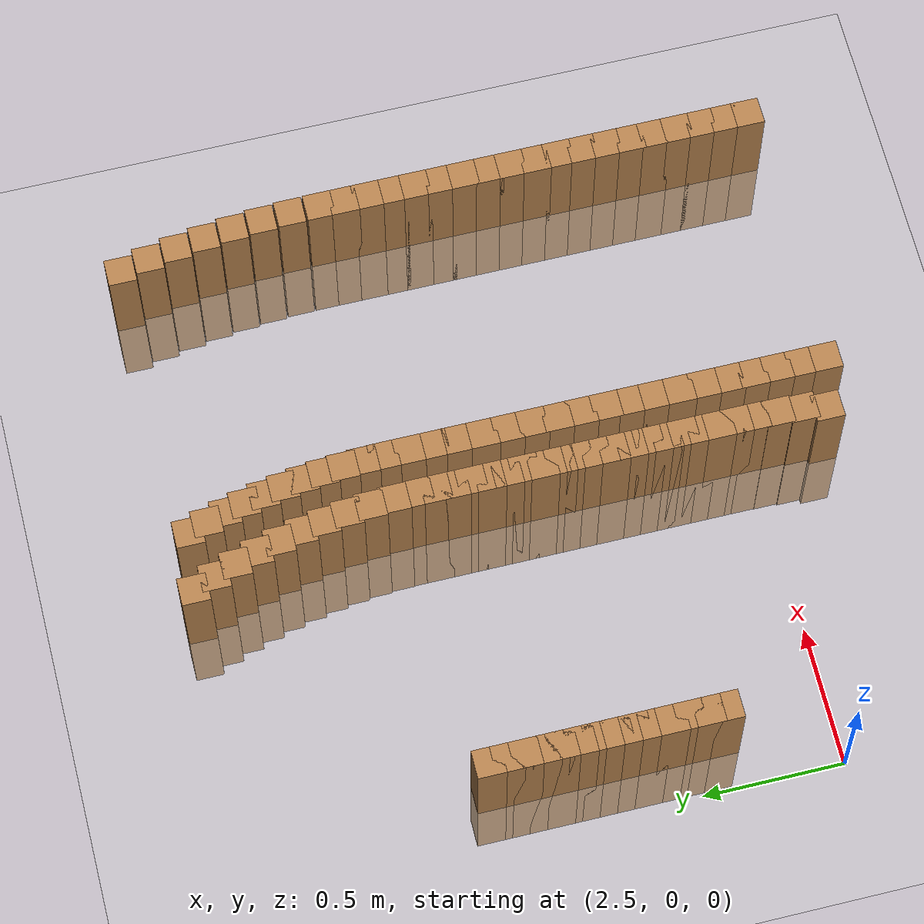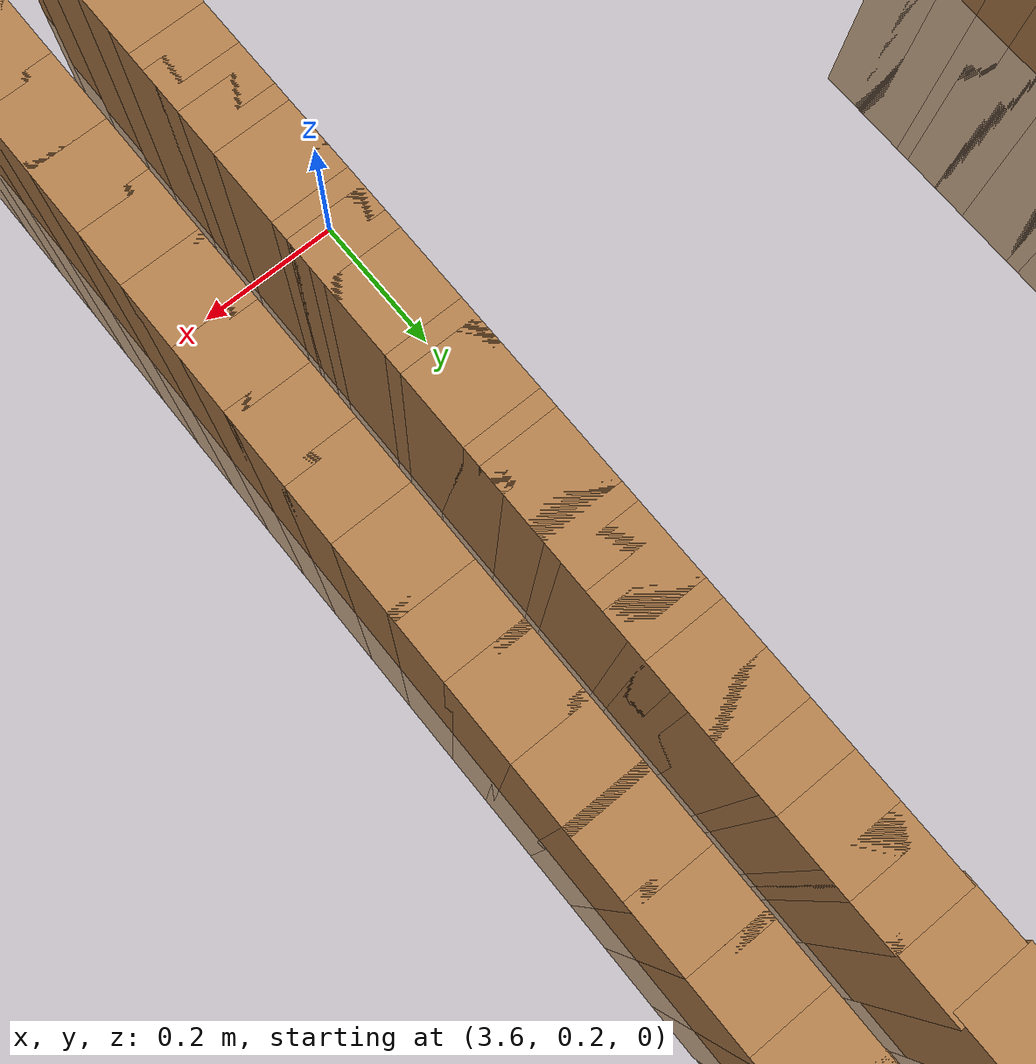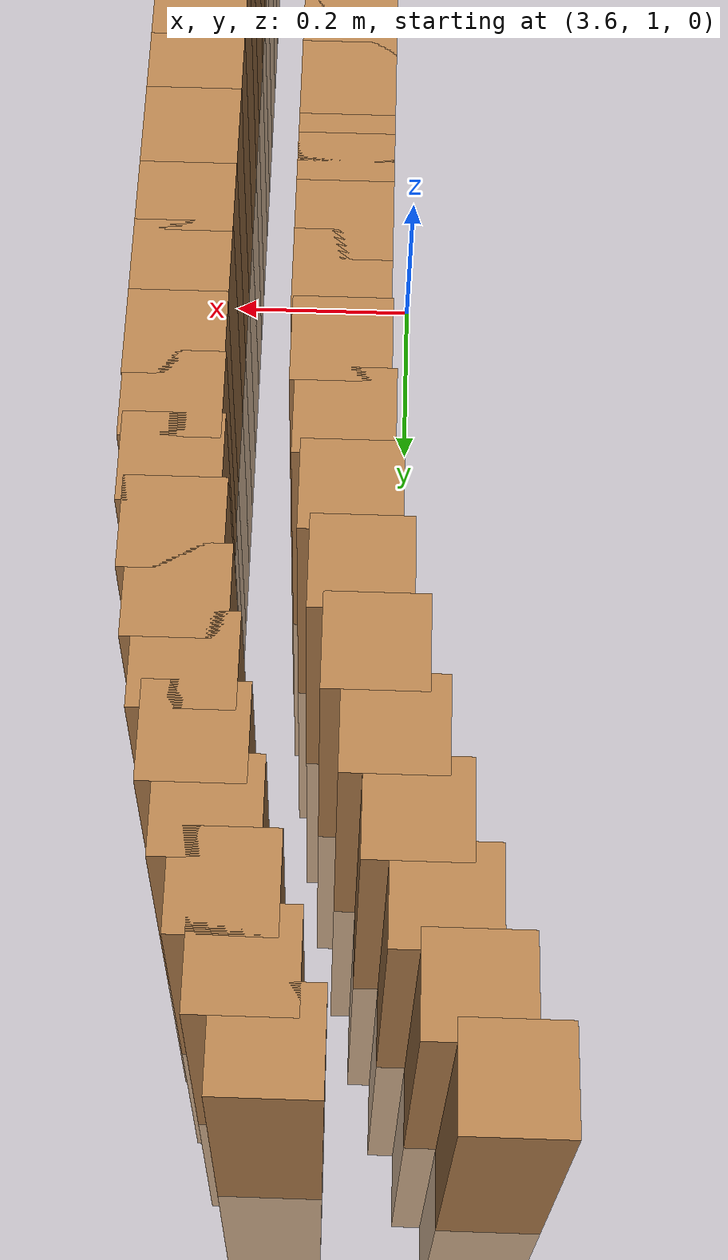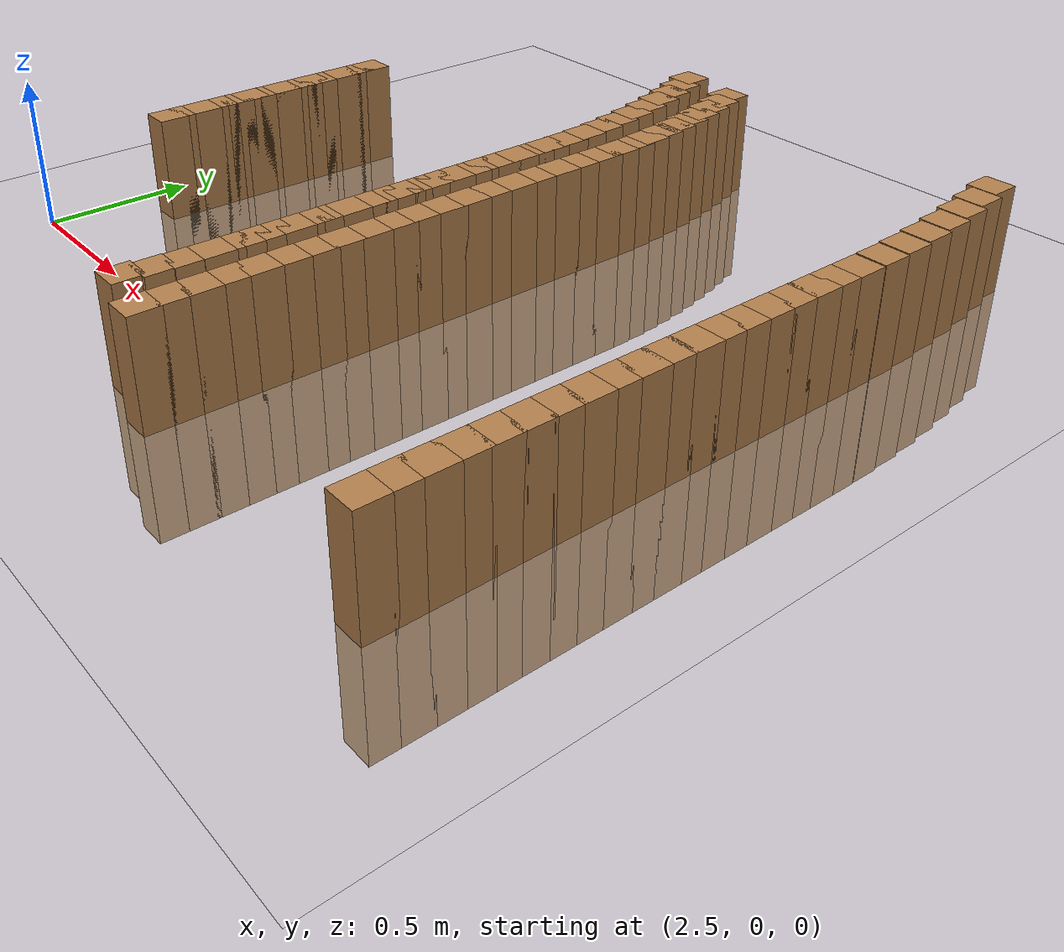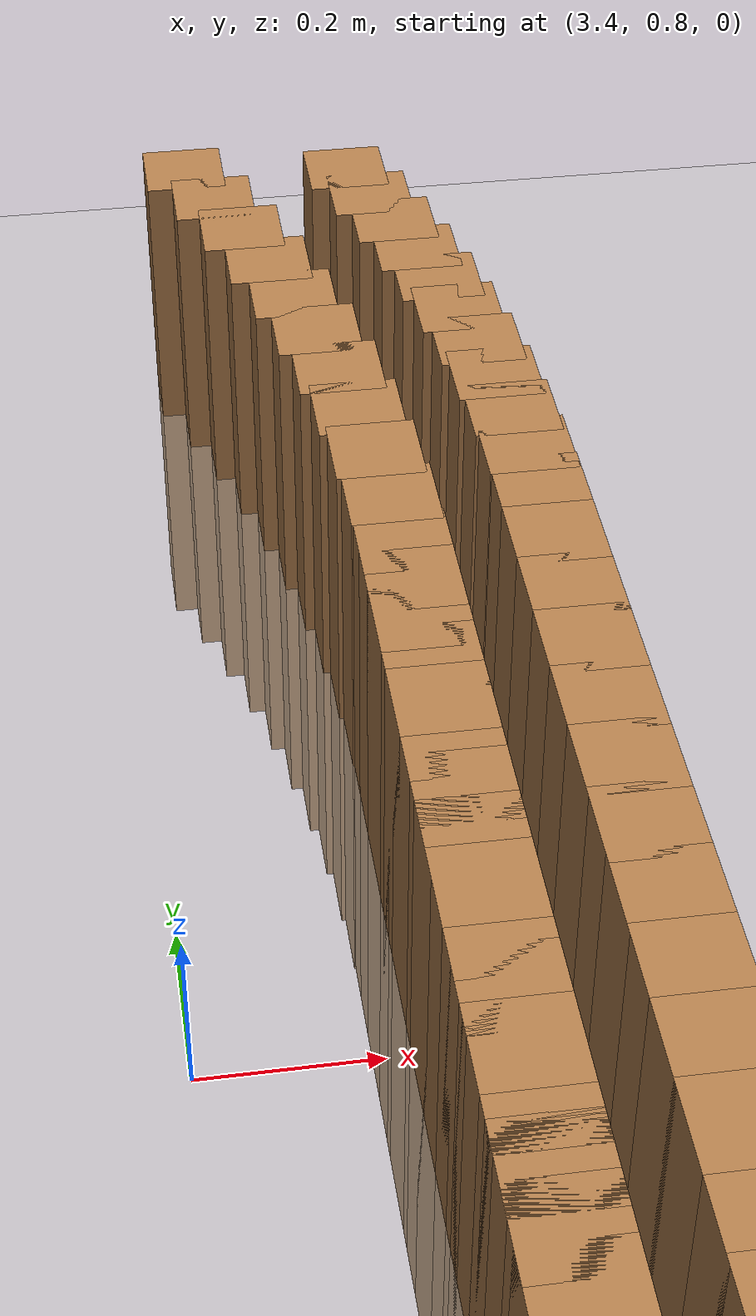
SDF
<sdf version="1.6">
 <world name="default">
  <model name="ground_plane">
   <static>1</static>
   <link name="link">
    <collision name="collision">
     <geometry><plane><normal>0 0 1</normal><size>100 100</size></plane></geometry>
     <surface><friction><ode><mu>100</mu><mu2>50</mu2></ode></friction></surface>
    </collision>
    <visual name="visual">
     <cast_shadows>0</cast_shadows>
     <geometry><plane><normal>0 0 1</normal><size>100 100</size></plane></geometry>
     <material>
      <script><uri>file://media/materials/scripts/gazebo.material</uri><name>Gazebo/Grey</name></script>
     </material>
    </visual>
   </link>
  </model>
  <model name="track">
   <link name="inner_176">
    <pose>3.509146 2.018417 0.000000 0 -0 0</pose>
    <collision name="collision"><geometry><box><size>0.1 0.1 0.7</size></box></geometry></collision>
    <visual name="visual">
     <geometry><box><size>0.1 0.1 0.7</size></box></geometry>
     <material>
      <script><uri>file://media/materials/scripts/gazebo.material</uri><name>Gazebo/Wood</name></script>
     </material>
    </visual>
   </link>
   <link name="inner_177">
    <pose>3.540439 1.940664 0.000000 0 -0 0</pose>
    <collision name="collision"><geometry><box><size>0.1 0.1 0.7</size></box></geometry></collision>
    <visual name="visual">
     <geometry><box><size>0.1 0.1 0.7</size></box></geometry>
     <material>
      <script><uri>file://media/materials/scripts/gazebo.material</uri><name>Gazebo/Wood</name></script>
     </material>
    </visual>
   </link>
   <link name="inner_178">
    <pose>3.568576 1.861714 0.000000 0 -0 0</pose>
    <collision name="collision"><geometry><box><size>0.1 0.1 0.7</size></box></geometry></collision>
    <visual name="visual">
     <geometry><box><size>0.1 0.1 0.7</size></box></geometry>
     <material>
      <script><uri>file://media/materials/scripts/gazebo.material</uri><name>Gazebo/Wood</name></script>
     </material>
    </visual>
   </link>
   <link name="inner_179">
    <pose>3.593511 1.781696 0.000000 0 -0 0</pose>
    <collision name="collision"><geometry><box><size>0.1 0.1 0.7</size></box></geometry></collision>
    <visual name="visual">
     <geometry><box><size>0.1 0.1 0.7</size></box></geometry>
     <material>
      <script><uri>file://media/materials/scripts/gazebo.material</uri><name>Gazebo/Wood</name></script>
     </material>
    </visual>
   </link>
   <link name="inner_180">
    <pose>3.615203 1.700738 0.000000 0 -0 0</pose>
    <collision name="collision"><geometry><box><size>0.1 0.1 0.7</size></box></geometry></collision>
    <visual name="visual">
     <geometry><box><size>0.1 0.1 0.7</size></box></geometry>
     <material>
      <script><uri>file://media/materials/scripts/gazebo.material</uri><name>Gazebo/Wood</name></script>
     </material>
    </visual>
   </link>
   <link name="inner_181">
    <pose>3.633618 1.618972 0.000000 0 -0 0</pose>
    <collision name="collision"><geometry><box><size>0.1 0.1 0.7</size></box></geometry></collision>
    <visual name="visual">
     <geometry><box><size>0.1 0.1 0.7</size></box></geometry>
     <material>
      <script><uri>file://media/materials/scripts/gazebo.material</uri><name>Gazebo/Wood</name></script>
     </material>
    </visual>
   </link>
   <link name="inner_182">
    <pose>3.648726 1.536532 0.000000 0 -0 0</pose>
    <collision name="collision"><geometry><box><size>0.1 0.1 0.7</size></box></geometry></collision>
    <visual name="visual">
     <geometry><box><size>0.1 0.1 0.7</size></box></geometry>
     <material>
      <script><uri>file://media/materials/scripts/gazebo.material</uri><name>Gazebo/Wood</name></script>
     </material>
    </visual>
   </link>
   <link name="inner_183">
    <pose>3.660502 1.453549 0.000000 0 -0 0</pose>
    <collision name="collision"><geometry><box><size>0.1 0.1 0.7</size></box></geometry></collision>
    <visual name="visual">
     <geometry><box><size>0.1 0.1 0.7</size></box></geometry>
     <material>
      <script><uri>file://media/materials/scripts/gazebo.material</uri><name>Gazebo/Wood</name></script>
     </material>
    </visual>
   </link>
   <link name="inner_184">
    <pose>3.668927 1.370160 0.000000 0 -0 0</pose>
    <collision name="collision"><geometry><box><size>0.1 0.1 0.7</size></box></geometry></collision>
    <visual name="visual">
     <geometry><box><size>0.1 0.1 0.7</size></box></geometry>
     <material>
      <script><uri>file://media/materials/scripts/gazebo.material</uri><name>Gazebo/Wood</name></script>
     </material>
    </visual>
   </link>
   <link name="inner_185">
    <pose>3.673988 1.286499 0.000000 0 -0 0</pose>
    <collision name="collision"><geometry><box><size>0.1 0.1 0.7</size></box></geometry></collision>
    <visual name="visual">
     <geometry><box><size>0.1 0.1 0.7</size></box></geometry>
     <material>
      <script><uri>file://media/materials/scripts/gazebo.material</uri><name>Gazebo/Wood</name></script>
     </material>
    </visual>
   </link>
   <link name="inner_186">
    <pose>3.675676 1.202703 0.000000 0 -0 0</pose>
    <collision name="collision"><geometry><box><size>0.1 0.1 0.7</size></box></geometry></collision>
    <visual name="visual">
     <geometry><box><size>0.1 0.1 0.7</size></box></geometry>
     <material>
      <script><uri>file://media/materials/scripts/gazebo.material</uri><name>Gazebo/Wood</name></script>
     </material>
    </visual>
   </link>
   <link name="inner_187">
    <pose>3.675676 1.140114 0.000000 0 -0 0</pose>
    <collision name="collision"><geometry><box><size>0.1 0.1 0.7</size></box></geometry></collision>
    <visual name="visual">
     <geometry><box><size>0.1 0.1 0.7</size></box></geometry>
     <material>
      <script><uri>file://media/materials/scripts/gazebo.material</uri><name>Gazebo/Wood</name></script>
     </material>
    </visual>
   </link>
   <link name="inner_188">
    <pose>3.675676 1.077525 0.000000 0 -0 0</pose>
    <collision name="collision"><geometry><box><size>0.1 0.1 0.7</size></box></geometry></collision>
    <visual name="visual">
     <geometry><box><size>0.1 0.1 0.7</size></box></geometry>
     <material>
      <script><uri>file://media/materials/scripts/gazebo.material</uri><name>Gazebo/Wood</name></script>
     </material>
    </visual>
   </link>
   <link name="inner_189">
    <pose>3.675676 1.014936 0.000000 0 -0 0</pose>
    <collision name="collision"><geometry><box><size>0.1 0.1 0.7</size></box></geometry></collision>
    <visual name="visual">
     <geometry><box><size>0.1 0.1 0.7</size></box></geometry>
     <material>
      <script><uri>file://media/materials/scripts/gazebo.material</uri><name>Gazebo/Wood</name></script>
     </material>
    </visual>
   </link>
   <link name="inner_190">
    <pose>3.675676 0.952347 0.000000 0 -0 0</pose>
    <collision name="collision"><geometry><box><size>0.1 0.1 0.7</size></box></geometry></collision>
    <visual name="visual">
     <geometry><box><size>0.1 0.1 0.7</size></box></geometry>
     <material>
      <script><uri>file://media/materials/scripts/gazebo.material</uri><name>Gazebo/Wood</name></script>
     </material>
    </visual>
   </link>
   <link name="inner_191">
    <pose>3.675676 0.889758 0.000000 0 -0 0</pose>
    <collision name="collision"><geometry><box><size>0.1 0.1 0.7</size></box></geometry></collision>
    <visual name="visual">
     <geometry><box><size>0.1 0.1 0.7</size></box></geometry>
     <material>
      <script><uri>file://media/materials/scripts/gazebo.material</uri><name>Gazebo/Wood</name></script>
     </material>
    </visual>
   </link>
   <link name="inner_192">
    <pose>3.675676 0.827169 0.000000 0 -0 0</pose>
    <collision name="collision"><geometry><box><size>0.1 0.1 0.7</size></box></geometry></collision>
    <visual name="visual">
     <geometry><box><size>0.1 0.1 0.7</size></box></geometry>
     <material>
      <script><uri>file://media/materials/scripts/gazebo.material</uri><name>Gazebo/Wood</name></script>
     </material>
    </visual>
   </link>
   <link name="inner_193">
    <pose>3.675676 0.764580 0.000000 0 -0 0</pose>
    <collision name="collision"><geometry><box><size>0.1 0.1 0.7</size></box></geometry></collision>
    <visual name="visual">
     <geometry><box><size>0.1 0.1 0.7</size></box></geometry>
     <material>
      <script><uri>file://media/materials/scripts/gazebo.material</uri><name>Gazebo/Wood</name></script>
     </material>
    </visual>
   </link>
   <link name="inner_194">
    <pose>3.675676 0.701991 0.000000 0 -0 0</pose>
    <collision name="collision"><geometry><box><size>0.1 0.1 0.7</size></box></geometry></collision>
    <visual name="visual">
     <geometry><box><size>0.1 0.1 0.7</size></box></geometry>
     <material>
      <script><uri>file://media/materials/scripts/gazebo.material</uri><name>Gazebo/Wood</name></script>
     </material>
    </visual>
   </link>
   <link name="inner_195">
    <pose>3.675676 0.639403 0.000000 0 -0 0</pose>
    <collision name="collision"><geometry><box><size>0.1 0.1 0.7</size></box></geometry></collision>
    <visual name="visual">
     <geometry><box><size>0.1 0.1 0.7</size></box></geometry>
     <material>
      <script><uri>file://media/materials/scripts/gazebo.material</uri><name>Gazebo/Wood</name></script>
     </material>
    </visual>
   </link>
   <link name="inner_196">
    <pose>3.675676 0.576814 0.000000 0 -0 0</pose>
    <collision name="collision"><geometry><box><size>0.1 0.1 0.7</size></box></geometry></collision>
    <visual name="visual">
     <geometry><box><size>0.1 0.1 0.7</size></box></geometry>
     <material>
      <script><uri>file://media/materials/scripts/gazebo.material</uri><name>Gazebo/Wood</name></script>
     </material>
    </visual>
   </link>
   <link name="inner_197">
    <pose>3.675676 0.514225 0.000000 0 -0 0</pose>
    <collision name="collision"><geometry><box><size>0.1 0.1 0.7</size></box></geometry></collision>
    <visual name="visual">
     <geometry><box><size>0.1 0.1 0.7</size></box></geometry>
     <material>
      <script><uri>file://media/materials/scripts/gazebo.material</uri><name>Gazebo/Wood</name></script>
     </material>
    </visual>
   </link>
   <link name="inner_198">
    <pose>3.675676 0.451636 0.000000 0 -0 0</pose>
    <collision name="collision"><geometry><box><size>0.1 0.1 0.7</size></box></geometry></collision>
    <visual name="visual">
     <geometry><box><size>0.1 0.1 0.7</size></box></geometry>
     <material>
      <script><uri>file://media/materials/scripts/gazebo.material</uri><name>Gazebo/Wood</name></script>
     </material>
    </visual>
   </link>
   <link name="inner_199">
    <pose>3.675676 0.389047 0.000000 0 -0 0</pose>
    <collision name="collision"><geometry><box><size>0.1 0.1 0.7</size></box></geometry></collision>
    <visual name="visual">
     <geometry><box><size>0.1 0.1 0.7</size></box></geometry>
     <material>
      <script><uri>file://media/materials/scripts/gazebo.material</uri><name>Gazebo/Wood</name></script>
     </material>
    </visual>
   </link>
   <link name="inner_200">
    <pose>3.675676 0.326458 0.000000 0 -0 0</pose>
    <collision name="collision"><geometry><box><size>0.1 0.1 0.7</size></box></geometry></collision>
    <visual name="visual">
     <geometry><box><size>0.1 0.1 0.7</size></box></geometry>
     <material>
      <script><uri>file://media/materials/scripts/gazebo.material</uri><name>Gazebo/Wood</name></script>
     </material>
    </visual>
   </link>
   <link name="inner_201">
    <pose>3.675676 0.263869 0.000000 0 -0 0</pose>
    <collision name="collision"><geometry><box><size>0.1 0.1 0.7</size></box></geometry></collision>
    <visual name="visual">
     <geometry><box><size>0.1 0.1 0.7</size></box></geometry>
     <material>
      <script><uri>file://media/materials/scripts/gazebo.material</uri><name>Gazebo/Wood</name></script>
     </material>
    </visual>
   </link>
   <link name="inner_202">
    <pose>3.675676 0.201280 0.000000 0 -0 0</pose>
    <collision name="collision"><geometry><box><size>0.1 0.1 0.7</size></box></geometry></collision>
    <visual name="visual">
     <geometry><box><size>0.1 0.1 0.7</size></box></geometry>
     <material>
      <script><uri>file://media/materials/scripts/gazebo.material</uri><name>Gazebo/Wood</name></script>
     </material>
    </visual>
   </link>
   <link name="inner_203">
    <pose>3.675676 0.138691 0.000000 0 -0 0</pose>
    <collision name="collision"><geometry><box><size>0.1 0.1 0.7</size></box></geometry></collision>
    <visual name="visual">
     <geometry><box><size>0.1 0.1 0.7</size></box></geometry>
     <material>
      <script><uri>file://media/materials/scripts/gazebo.material</uri><name>Gazebo/Wood</name></script>
     </material>
    </visual>
   </link>
   <link name="inner_204">
    <pose>3.675676 0.076102 0.000000 0 -0 0</pose>
    <collision name="collision"><geometry><box><size>0.1 0.1 0.7</size></box></geometry></collision>
    <visual name="visual">
     <geometry><box><size>0.1 0.1 0.7</size></box></geometry>
     <material>
      <script><uri>file://media/materials/scripts/gazebo.material</uri><name>Gazebo/Wood</name></script>
     </material>
    </visual>
   </link>
   <link name="inner_205">
    <pose>3.675676 0.013514 0.000000 0 -0 0</pose>
    <collision name="collision"><geometry><box><size>0.1 0.1 0.7</size></box></geometry></collision>
    <visual name="visual">
     <geometry><box><size>0.1 0.1 0.7</size></box></geometry>
     <material>
      <script><uri>file://media/materials/scripts/gazebo.material</uri><name>Gazebo/Wood</name></script>
     </material>
    </visual>
   </link>
   <link name="inner_206">
    <pose>3.674210 -0.072301 0.000000 0 -0 0</pose>
    <collision name="collision"><geometry><box><size>0.1 0.1 0.7</size></box></geometry></collision>
    <visual name="visual">
     <geometry><box><size>0.1 0.1 0.7</size></box></geometry>
     <material>
      <script><uri>file://media/materials/scripts/gazebo.material</uri><name>Gazebo/Wood</name></script>
     </material>
    </visual>
   </link>
   <link name="inner_207">
    <pose>3.669816 -0.158015 0.000000 0 -0 0</pose>
    <collision name="collision"><geometry><box><size>0.1 0.1 0.7</size></box></geometry></collision>
    <visual name="visual">
     <geometry><box><size>0.1 0.1 0.7</size></box></geometry>
     <material>
      <script><uri>file://media/materials/scripts/gazebo.material</uri><name>Gazebo/Wood</name></script>
     </material>
    </visual>
   </link>
   <link name="inner_208">
    <pose>3.654846 -0.242742 0.000000 0 -0 0</pose>
    <collision name="collision"><geometry><box><size>0.1 0.1 0.7</size></box></geometry></collision>
    <visual name="visual">
     <geometry><box><size>0.1 0.1 0.7</size></box></geometry>
     <material>
      <script><uri>file://media/materials/scripts/gazebo.material</uri><name>Gazebo/Wood</name></script>
     </material>
    </visual>
   </link>
   <link name="inner_545">
    <pose>3.837838 -0.289189 0.000000 0 -0 0</pose>
    <collision name="collision"><geometry><box><size>0.1 0.1 0.7</size></box></geometry></collision>
    <visual name="visual">
     <geometry><box><size>0.1 0.1 0.7</size></box></geometry>
     <material>
      <script><uri>file://media/materials/scripts/gazebo.material</uri><name>Gazebo/Wood</name></script>
     </material>
    </visual>
   </link>
   <link name="inner_546">
    <pose>3.837838 -0.201802 0.000000 0 -0 0</pose>
    <collision name="collision"><geometry><box><size>0.1 0.1 0.7</size></box></geometry></collision>
    <visual name="visual">
     <geometry><box><size>0.1 0.1 0.7</size></box></geometry>
     <material>
      <script><uri>file://media/materials/scripts/gazebo.material</uri><name>Gazebo/Wood</name></script>
     </material>
    </visual>
   </link>
   <link name="inner_547">
    <pose>3.837838 -0.114414 0.000000 0 -0 0</pose>
    <collision name="collision"><geometry><box><size>0.1 0.1 0.7</size></box></geometry></collision>
    <visual name="visual">
     <geometry><box><size>0.1 0.1 0.7</size></box></geometry>
     <material>
      <script><uri>file://media/materials/scripts/gazebo.material</uri><name>Gazebo/Wood</name></script>
     </material>
    </visual>
   </link>
   <link name="inner_548">
    <pose>3.837838 -0.027027 0.000000 0 -0 0</pose>
    <collision name="collision"><geometry><box><size>0.1 0.1 0.7</size></box></geometry></collision>
    <visual name="visual">
     <geometry><box><size>0.1 0.1 0.7</size></box></geometry>
     <material>
      <script><uri>file://media/materials/scripts/gazebo.material</uri><name>Gazebo/Wood</name></script>
     </material>
    </visual>
   </link>
   <link name="inner_549">
    <pose>3.837838 0.060360 0.000000 0 -0 0</pose>
    <collision name="collision"><geometry><box><size>0.1 0.1 0.7</size></box></geometry></collision>
    <visual name="visual">
     <geometry><box><size>0.1 0.1 0.7</size></box></geometry>
     <material>
      <script><uri>file://media/materials/scripts/gazebo.material</uri><name>Gazebo/Wood</name></script>
     </material>
    </visual>
   </link>
   <link name="inner_550">
    <pose>3.837838 0.147748 0.000000 0 -0 0</pose>
    <collision name="collision"><geometry><box><size>0.1 0.1 0.7</size></box></geometry></collision>
    <visual name="visual">
     <geometry><box><size>0.1 0.1 0.7</size></box></geometry>
     <material>
      <script><uri>file://media/materials/scripts/gazebo.material</uri><name>Gazebo/Wood</name></script>
     </material>
    </visual>
   </link>
   <link name="inner_551">
    <pose>3.837838 0.235135 0.000000 0 -0 0</pose>
    <collision name="collision"><geometry><box><size>0.1 0.1 0.7</size></box></geometry></collision>
    <visual name="visual">
     <geometry><box><size>0.1 0.1 0.7</size></box></geometry>
     <material>
      <script><uri>file://media/materials/scripts/gazebo.material</uri><name>Gazebo/Wood</name></script>
     </material>
    </visual>
   </link>
   <link name="inner_552">
    <pose>3.837838 0.322523 0.000000 0 -0 0</pose>
    <collision name="collision"><geometry><box><size>0.1 0.1 0.7</size></box></geometry></collision>
    <visual name="visual">
     <geometry><box><size>0.1 0.1 0.7</size></box></geometry>
     <material>
      <script><uri>file://media/materials/scripts/gazebo.material</uri><name>Gazebo/Wood</name></script>
     </material>
    </visual>
   </link>
   <link name="inner_553">
    <pose>3.837838 0.409910 0.000000 0 -0 0</pose>
    <collision name="collision"><geometry><box><size>0.1 0.1 0.7</size></box></geometry></collision>
    <visual name="visual">
     <geometry><box><size>0.1 0.1 0.7</size></box></geometry>
     <material>
      <script><uri>file://media/materials/scripts/gazebo.material</uri><name>Gazebo/Wood</name></script>
     </material>
    </visual>
   </link>
   <link name="inner_554">
    <pose>3.837838 0.497297 0.000000 0 -0 0</pose>
    <collision name="collision"><geometry><box><size>0.1 0.1 0.7</size></box></geometry></collision>
    <visual name="visual">
     <geometry><box><size>0.1 0.1 0.7</size></box></geometry>
     <material>
      <script><uri>file://media/materials/scripts/gazebo.material</uri><name>Gazebo/Wood</name></script>
     </material>
    </visual>
   </link>
   <link name="inner_555">
    <pose>3.837838 0.584685 0.000000 0 -0 0</pose>
    <collision name="collision"><geometry><box><size>0.1 0.1 0.7</size></box></geometry></collision>
    <visual name="visual">
     <geometry><box><size>0.1 0.1 0.7</size></box></geometry>
     <material>
      <script><uri>file://media/materials/scripts/gazebo.material</uri><name>Gazebo/Wood</name></script>
     </material>
    </visual>
   </link>
   <link name="inner_556">
    <pose>3.837838 0.672072 0.000000 0 -0 0</pose>
    <collision name="collision"><geometry><box><size>0.1 0.1 0.7</size></box></geometry></collision>
    <visual name="visual">
     <geometry><box><size>0.1 0.1 0.7</size></box></geometry>
     <material>
      <script><uri>file://media/materials/scripts/gazebo.material</uri><name>Gazebo/Wood</name></script>
     </material>
    </visual>
   </link>
   <link name="inner_557">
    <pose>3.837838 0.759459 0.000000 0 -0 0</pose>
    <collision name="collision"><geometry><box><size>0.1 0.1 0.7</size></box></geometry></collision>
    <visual name="visual">
     <geometry><box><size>0.1 0.1 0.7</size></box></geometry>
     <material>
      <script><uri>file://media/materials/scripts/gazebo.material</uri><name>Gazebo/Wood</name></script>
     </material>
    </visual>
   </link>
   <link name="inner_558">
    <pose>3.837838 0.846847 0.000000 0 -0 0</pose>
    <collision name="collision"><geometry><box><size>0.1 0.1 0.7</size></box></geometry></collision>
    <visual name="visual">
     <geometry><box><size>0.1 0.1 0.7</size></box></geometry>
     <material>
      <script><uri>file://media/materials/scripts/gazebo.material</uri><name>Gazebo/Wood</name></script>
     </material>
    </visual>
   </link>
   <link name="inner_559">
    <pose>3.837838 0.934234 0.000000 0 -0 0</pose>
    <collision name="collision"><geometry><box><size>0.1 0.1 0.7</size></box></geometry></collision>
    <visual name="visual">
     <geometry><box><size>0.1 0.1 0.7</size></box></geometry>
     <material>
      <script><uri>file://media/materials/scripts/gazebo.material</uri><name>Gazebo/Wood</name></script>
     </material>
    </visual>
   </link>
   <link name="inner_560">
    <pose>3.837838 1.021622 0.000000 0 -0 0</pose>
    <collision name="collision"><geometry><box><size>0.1 0.1 0.7</size></box></geometry></collision>
    <visual name="visual">
     <geometry><box><size>0.1 0.1 0.7</size></box></geometry>
     <material>
      <script><uri>file://media/materials/scripts/gazebo.material</uri><name>Gazebo/Wood</name></script>
     </material>
    </visual>
   </link>
   <link name="inner_561">
    <pose>3.837838 1.109009 0.000000 0 -0 0</pose>
    <collision name="collision"><geometry><box><size>0.1 0.1 0.7</size></box></geometry></collision>
    <visual name="visual">
     <geometry><box><size>0.1 0.1 0.7</size></box></geometry>
     <material>
      <script><uri>file://media/materials/scripts/gazebo.material</uri><name>Gazebo/Wood</name></script>
     </material>
    </visual>
   </link>
   <link name="inner_562">
    <pose>3.837838 1.196396 0.000000 0 -0 0</pose>
    <collision name="collision"><geometry><box><size>0.1 0.1 0.7</size></box></geometry></collision>
    <visual name="visual">
     <geometry><box><size>0.1 0.1 0.7</size></box></geometry>
     <material>
      <script><uri>file://media/materials/scripts/gazebo.material</uri><name>Gazebo/Wood</name></script>
     </material>
    </visual>
   </link>
   <link name="inner_563">
    <pose>3.837838 1.283784 0.000000 0 -0 0</pose>
    <collision name="collision"><geometry><box><size>0.1 0.1 0.7</size></box></geometry></collision>
    <visual name="visual">
     <geometry><box><size>0.1 0.1 0.7</size></box></geometry>
     <material>
      <script><uri>file://media/materials/scripts/gazebo.material</uri><name>Gazebo/Wood</name></script>
     </material>
    </visual>
   </link>
   <link name="inner_564">
    <pose>3.836630 1.356032 0.000000 0 -0 0</pose>
    <collision name="collision"><geometry><box><size>0.1 0.1 0.7</size></box></geometry></collision>
    <visual name="visual">
     <geometry><box><size>0.1 0.1 0.7</size></box></geometry>
     <material>
      <script><uri>file://media/materials/scripts/gazebo.material</uri><name>Gazebo/Wood</name></script>
     </material>
    </visual>
   </link>
   <link name="inner_565">
    <pose>3.833009 1.428200 0.000000 0 -0 0</pose>
    <collision name="collision"><geometry><box><size>0.1 0.1 0.7</size></box></geometry></collision>
    <visual name="visual">
     <geometry><box><size>0.1 0.1 0.7</size></box></geometry>
     <material>
      <script><uri>file://media/materials/scripts/gazebo.material</uri><name>Gazebo/Wood</name></script>
     </material>
    </visual>
   </link>
   <link name="inner_566">
    <pose>3.826979 1.500207 0.000000 0 -0 0</pose>
    <collision name="collision"><geometry><box><size>0.1 0.1 0.7</size></box></geometry></collision>
    <visual name="visual">
     <geometry><box><size>0.1 0.1 0.7</size></box></geometry>
     <material>
      <script><uri>file://media/materials/scripts/gazebo.material</uri><name>Gazebo/Wood</name></script>
     </material>
    </visual>
   </link>
   <link name="inner_567">
    <pose>3.818546 1.571972 0.000000 0 -0 0</pose>
    <collision name="collision"><geometry><box><size>0.1 0.1 0.7</size></box></geometry></collision>
    <visual name="visual">
     <geometry><box><size>0.1 0.1 0.7</size></box></geometry>
     <material>
      <script><uri>file://media/materials/scripts/gazebo.material</uri><name>Gazebo/Wood</name></script>
     </material>
    </visual>
   </link>
   <link name="inner_568">
    <pose>3.807719 1.643415 0.000000 0 -0 0</pose>
    <collision name="collision"><geometry><box><size>0.1 0.1 0.7</size></box></geometry></collision>
    <visual name="visual">
     <geometry><box><size>0.1 0.1 0.7</size></box></geometry>
     <material>
      <script><uri>file://media/materials/scripts/gazebo.material</uri><name>Gazebo/Wood</name></script>
     </material>
    </visual>
   </link>
   <link name="inner_569">
    <pose>3.794512 1.714456 0.000000 0 -0 0</pose>
    <collision name="collision"><geometry><box><size>0.1 0.1 0.7</size></box></geometry></collision>
    <visual name="visual">
     <geometry><box><size>0.1 0.1 0.7</size></box></geometry>
     <material>
      <script><uri>file://media/materials/scripts/gazebo.material</uri><name>Gazebo/Wood</name></script>
     </material>
    </visual>
   </link>
   <link name="inner_570">
    <pose>3.778938 1.785017 0.000000 0 -0 0</pose>
    <collision name="collision"><geometry><box><size>0.1 0.1 0.7</size></box></geometry></collision>
    <visual name="visual">
     <geometry><box><size>0.1 0.1 0.7</size></box></geometry>
     <material>
      <script><uri>file://media/materials/scripts/gazebo.material</uri><name>Gazebo/Wood</name></script>
     </material>
    </visual>
   </link>
   <link name="inner_571">
    <pose>3.761014 1.855017 0.000000 0 -0 0</pose>
    <collision name="collision"><geometry><box><size>0.1 0.1 0.7</size></box></geometry></collision>
    <visual name="visual">
     <geometry><box><size>0.1 0.1 0.7</size></box></geometry>
     <material>
      <script><uri>file://media/materials/scripts/gazebo.material</uri><name>Gazebo/Wood</name></script>
     </material>
    </visual>
   </link>
   <link name="inner_572">
    <pose>3.740762 1.924380 0.000000 0 -0 0</pose>
    <collision name="collision"><geometry><box><size>0.1 0.1 0.7</size></box></geometry></collision>
    <visual name="visual">
     <geometry><box><size>0.1 0.1 0.7</size></box></geometry>
     <material>
      <script><uri>file://media/materials/scripts/gazebo.material</uri><name>Gazebo/Wood</name></script>
     </material>
    </visual>
   </link>
   <link name="inner_573">
    <pose>3.718203 1.993027 0.000000 0 -0 0</pose>
    <collision name="collision"><geometry><box><size>0.1 0.1 0.7</size></box></geometry></collision>
    <visual name="visual">
     <geometry><box><size>0.1 0.1 0.7</size></box></geometry>
     <material>
      <script><uri>file://media/materials/scripts/gazebo.material</uri><name>Gazebo/Wood</name></script>
     </material>
    </visual>
   </link>
   <link name="outer_186">
    <pose>2.675676 1.202703 0.000000 0 -0 0</pose>
    <collision name="collision"><geometry><box><size>0.1 0.1 0.7</size></box></geometry></collision>
    <visual name="visual">
     <geometry><box><size>0.1 0.1 0.7</size></box></geometry>
     <material>
      <script><uri>file://media/materials/scripts/gazebo.material</uri><name>Gazebo/Wood</name></script>
     </material>
    </visual>
   </link>
   <link name="outer_187">
    <pose>2.675676 1.140114 0.000000 0 -0 0</pose>
    <collision name="collision"><geometry><box><size>0.1 0.1 0.7</size></box></geometry></collision>
    <visual name="visual">
     <geometry><box><size>0.1 0.1 0.7</size></box></geometry>
     <material>
      <script><uri>file://media/materials/scripts/gazebo.material</uri><name>Gazebo/Wood</name></script>
     </material>
    </visual>
   </link>
   <link name="outer_188">
    <pose>2.675676 1.077525 0.000000 0 -0 0</pose>
    <collision name="collision"><geometry><box><size>0.1 0.1 0.7</size></box></geometry></collision>
    <visual name="visual">
     <geometry><box><size>0.1 0.1 0.7</size></box></geometry>
     <material>
      <script><uri>file://media/materials/scripts/gazebo.material</uri><name>Gazebo/Wood</name></script>
     </material>
    </visual>
   </link>
   <link name="outer_189">
    <pose>2.675676 1.014936 0.000000 0 -0 0</pose>
    <collision name="collision"><geometry><box><size>0.1 0.1 0.7</size></box></geometry></collision>
    <visual name="visual">
     <geometry><box><size>0.1 0.1 0.7</size></box></geometry>
     <material>
      <script><uri>file://media/materials/scripts/gazebo.material</uri><name>Gazebo/Wood</name></script>
     </material>
    </visual>
   </link>
   <link name="outer_190">
    <pose>2.675676 0.952347 0.000000 0 -0 0</pose>
    <collision name="collision"><geometry><box><size>0.1 0.1 0.7</size></box></geometry></collision>
    <visual name="visual">
     <geometry><box><size>0.1 0.1 0.7</size></box></geometry>
     <material>
      <script><uri>file://media/materials/scripts/gazebo.material</uri><name>Gazebo/Wood</name></script>
     </material>
    </visual>
   </link>
   <link name="outer_191">
    <pose>2.675676 0.889758 0.000000 0 -0 0</pose>
    <collision name="collision"><geometry><box><size>0.1 0.1 0.7</size></box></geometry></collision>
    <visual name="visual">
     <geometry><box><size>0.1 0.1 0.7</size></box></geometry>
     <material>
      <script><uri>file://media/materials/scripts/gazebo.material</uri><name>Gazebo/Wood</name></script>
     </material>
    </visual>
   </link>
   <link name="outer_192">
    <pose>2.675676 0.827169 0.000000 0 -0 0</pose>
    <collision name="collision"><geometry><box><size>0.1 0.1 0.7</size></box></geometry></collision>
    <visual name="visual">
     <geometry><box><size>0.1 0.1 0.7</size></box></geometry>
     <material>
      <script><uri>file://media/materials/scripts/gazebo.material</uri><name>Gazebo/Wood</name></script>
     </material>
    </visual>
   </link>
   <link name="outer_193">
    <pose>2.675676 0.764580 0.000000 0 -0 0</pose>
    <collision name="collision"><geometry><box><size>0.1 0.1 0.7</size></box></geometry></collision>
    <visual name="visual">
     <geometry><box><size>0.1 0.1 0.7</size></box></geometry>
     <material>
      <script><uri>file://media/materials/scripts/gazebo.material</uri><name>Gazebo/Wood</name></script>
     </material>
    </visual>
   </link>
   <link name="outer_194">
    <pose>2.675676 0.701991 0.000000 0 -0 0</pose>
    <collision name="collision"><geometry><box><size>0.1 0.1 0.7</size></box></geometry></collision>
    <visual name="visual">
     <geometry><box><size>0.1 0.1 0.7</size></box></geometry>
     <material>
      <script><uri>file://media/materials/scripts/gazebo.material</uri><name>Gazebo/Wood</name></script>
     </material>
    </visual>
   </link>
   <link name="outer_195">
    <pose>2.675676 0.639403 0.000000 0 -0 0</pose>
    <collision name="collision"><geometry><box><size>0.1 0.1 0.7</size></box></geometry></collision>
    <visual name="visual">
     <geometry><box><size>0.1 0.1 0.7</size></box></geometry>
     <material>
      <script><uri>file://media/materials/scripts/gazebo.material</uri><name>Gazebo/Wood</name></script>
     </material>
    </visual>
   </link>
   <link name="outer_196">
    <pose>2.675676 0.576814 0.000000 0 -0 0</pose>
    <collision name="collision"><geometry><box><size>0.1 0.1 0.7</size></box></geometry></collision>
    <visual name="visual">
     <geometry><box><size>0.1 0.1 0.7</size></box></geometry>
     <material>
      <script><uri>file://media/materials/scripts/gazebo.material</uri><name>Gazebo/Wood</name></script>
     </material>
    </visual>
   </link>
   <link name="outer_197">
    <pose>2.675676 0.514225 0.000000 0 -0 0</pose>
    <collision name="collision"><geometry><box><size>0.1 0.1 0.7</size></box></geometry></collision>
    <visual name="visual">
     <geometry><box><size>0.1 0.1 0.7</size></box></geometry>
     <material>
      <script><uri>file://media/materials/scripts/gazebo.material</uri><name>Gazebo/Wood</name></script>
     </material>
    </visual>
   </link>
   <link name="outer_198">
    <pose>2.675676 0.451636 0.000000 0 -0 0</pose>
    <collision name="collision"><geometry><box><size>0.1 0.1 0.7</size></box></geometry></collision>
    <visual name="visual">
     <geometry><box><size>0.1 0.1 0.7</size></box></geometry>
     <material>
      <script><uri>file://media/materials/scripts/gazebo.material</uri><name>Gazebo/Wood</name></script>
     </material>
    </visual>
   </link>
   <link name="outer_199">
    <pose>2.675676 0.389047 0.000000 0 -0 0</pose>
    <collision name="collision"><geometry><box><size>0.1 0.1 0.7</size></box></geometry></collision>
    <visual name="visual">
     <geometry><box><size>0.1 0.1 0.7</size></box></geometry>
     <material>
      <script><uri>file://media/materials/scripts/gazebo.material</uri><name>Gazebo/Wood</name></script>
     </material>
    </visual>
   </link>
   <link name="outer_545">
    <pose>4.837838 -0.289189 0.000000 0 -0 0</pose>
    <collision name="collision"><geometry><box><size>0.1 0.1 0.7</size></box></geometry></collision>
    <visual name="visual">
     <geometry><box><size>0.1 0.1 0.7</size></box></geometry>
     <material>
      <script><uri>file://media/materials/scripts/gazebo.material</uri><name>Gazebo/Wood</name></script>
     </material>
    </visual>
   </link>
   <link name="outer_546">
    <pose>4.837838 -0.201802 0.000000 0 -0 0</pose>
    <collision name="collision"><geometry><box><size>0.1 0.1 0.7</size></box></geometry></collision>
    <visual name="visual">
     <geometry><box><size>0.1 0.1 0.7</size></box></geometry>
     <material>
      <script><uri>file://media/materials/scripts/gazebo.material</uri><name>Gazebo/Wood</name></script>
     </material>
    </visual>
   </link>
   <link name="outer_547">
    <pose>4.837838 -0.114414 0.000000 0 -0 0</pose>
    <collision name="collision"><geometry><box><size>0.1 0.1 0.7</size></box></geometry></collision>
    <visual name="visual">
     <geometry><box><size>0.1 0.1 0.7</size></box></geometry>
     <material>
      <script><uri>file://media/materials/scripts/gazebo.material</uri><name>Gazebo/Wood</name></script>
     </material>
    </visual>
   </link>
   <link name="outer_548">
    <pose>4.837838 -0.027027 0.000000 0 -0 0</pose>
    <collision name="collision"><geometry><box><size>0.1 0.1 0.7</size></box></geometry></collision>
    <visual name="visual">
     <geometry><box><size>0.1 0.1 0.7</size></box></geometry>
     <material>
      <script><uri>file://media/materials/scripts/gazebo.material</uri><name>Gazebo/Wood</name></script>
     </material>
    </visual>
   </link>
   <link name="outer_549">
    <pose>4.837838 0.060360 0.000000 0 -0 0</pose>
    <collision name="collision"><geometry><box><size>0.1 0.1 0.7</size></box></geometry></collision>
    <visual name="visual">
     <geometry><box><size>0.1 0.1 0.7</size></box></geometry>
     <material>
      <script><uri>file://media/materials/scripts/gazebo.material</uri><name>Gazebo/Wood</name></script>
     </material>
    </visual>
   </link>
   <link name="outer_550">
    <pose>4.837838 0.147748 0.000000 0 -0 0</pose>
    <collision name="collision"><geometry><box><size>0.1 0.1 0.7</size></box></geometry></collision>
    <visual name="visual">
     <geometry><box><size>0.1 0.1 0.7</size></box></geometry>
     <material>
      <script><uri>file://media/materials/scripts/gazebo.material</uri><name>Gazebo/Wood</name></script>
     </material>
    </visual>
   </link>
   <link name="outer_551">
    <pose>4.837838 0.235135 0.000000 0 -0 0</pose>
    <collision name="collision"><geometry><box><size>0.1 0.1 0.7</size></box></geometry></collision>
    <visual name="visual">
     <geometry><box><size>0.1 0.1 0.7</size></box></geometry>
     <material>
      <script><uri>file://media/materials/scripts/gazebo.material</uri><name>Gazebo/Wood</name></script>
     </material>
    </visual>
   </link>
   <link name="outer_552">
    <pose>4.837838 0.322523 0.000000 0 -0 0</pose>
    <collision name="collision"><geometry><box><size>0.1 0.1 0.7</size></box></geometry></collision>
    <visual name="visual">
     <geometry><box><size>0.1 0.1 0.7</size></box></geometry>
     <material>
      <script><uri>file://media/materials/scripts/gazebo.material</uri><name>Gazebo/Wood</name></script>
     </material>
    </visual>
   </link>
   <link name="outer_553">
    <pose>4.837838 0.409910 0.000000 0 -0 0</pose>
    <collision name="collision"><geometry><box><size>0.1 0.1 0.7</size></box></geometry></collision>
    <visual name="visual">
     <geometry><box><size>0.1 0.1 0.7</size></box></geometry>
     <material>
      <script><uri>file://media/materials/scripts/gazebo.material</uri><name>Gazebo/Wood</name></script>
     </material>
    </visual>
   </link>
   <link name="outer_554">
    <pose>4.837838 0.497297 0.000000 0 -0 0</pose>
    <collision name="collision"><geometry><box><size>0.1 0.1 0.7</size></box></geometry></collision>
    <visual name="visual">
     <geometry><box><size>0.1 0.1 0.7</size></box></geometry>
     <material>
      <script><uri>file://media/materials/scripts/gazebo.material</uri><name>Gazebo/Wood</name></script>
     </material>
    </visual>
   </link>
   <link name="outer_555">
    <pose>4.837838 0.584685 0.000000 0 -0 0</pose>
    <collision name="collision"><geometry><box><size>0.1 0.1 0.7</size></box></geometry></collision>
    <visual name="visual">
     <geometry><box><size>0.1 0.1 0.7</size></box></geometry>
     <material>
      <script><uri>file://media/materials/scripts/gazebo.material</uri><name>Gazebo/Wood</name></script>
     </material>
    </visual>
   </link>
   <link name="outer_556">
    <pose>4.837838 0.672072 0.000000 0 -0 0</pose>
    <collision name="collision"><geometry><box><size>0.1 0.1 0.7</size></box></geometry></collision>
    <visual name="visual">
     <geometry><box><size>0.1 0.1 0.7</size></box></geometry>
     <material>
      <script><uri>file://media/materials/scripts/gazebo.material</uri><name>Gazebo/Wood</name></script>
     </material>
    </visual>
   </link>
   <link name="outer_557">
    <pose>4.837838 0.759459 0.000000 0 -0 0</pose>
    <collision name="collision"><geometry><box><size>0.1 0.1 0.7</size></box></geometry></collision>
    <visual name="visual">
     <geometry><box><size>0.1 0.1 0.7</size></box></geometry>
     <material>
      <script><uri>file://media/materials/scripts/gazebo.material</uri><name>Gazebo/Wood</name></script>
     </material>
    </visual>
   </link>
   <link name="outer_558">
    <pose>4.837838 0.846847 0.000000 0 -0 0</pose>
    <collision name="collision"><geometry><box><size>0.1 0.1 0.7</size></box></geometry></collision>
    <visual name="visual">
     <geometry><box><size>0.1 0.1 0.7</size></box></geometry>
     <material>
      <script><uri>file://media/materials/scripts/gazebo.material</uri><name>Gazebo/Wood</name></script>
     </material>
    </visual>
   </link>
   <link name="outer_559">
    <pose>4.837838 0.934234 0.000000 0 -0 0</pose>
    <collision name="collision"><geometry><box><size>0.1 0.1 0.7</size></box></geometry></collision>
    <visual name="visual">
     <geometry><box><size>0.1 0.1 0.7</size></box></geometry>
     <material>
      <script><uri>file://media/materials/scripts/gazebo.material</uri><name>Gazebo/Wood</name></script>
     </material>
    </visual>
   </link>
   <link name="outer_560">
    <pose>4.837838 1.021622 0.000000 0 -0 0</pose>
    <collision name="collision"><geometry><box><size>0.1 0.1 0.7</size></box></geometry></collision>
    <visual name="visual">
     <geometry><box><size>0.1 0.1 0.7</size></box></geometry>
     <material>
      <script><uri>file://media/materials/scripts/gazebo.material</uri><name>Gazebo/Wood</name></script>
     </material>
    </visual>
   </link>
   <link name="outer_561">
    <pose>4.837838 1.109009 0.000000 0 -0 0</pose>
    <collision name="collision"><geometry><box><size>0.1 0.1 0.7</size></box></geometry></collision>
    <visual name="visual">
     <geometry><box><size>0.1 0.1 0.7</size></box></geometry>
     <material>
      <script><uri>file://media/materials/scripts/gazebo.material</uri><name>Gazebo/Wood</name></script>
     </material>
    </visual>
   </link>
   <link name="outer_562">
    <pose>4.837838 1.196396 0.000000 0 -0 0</pose>
    <collision name="collision"><geometry><box><size>0.1 0.1 0.7</size></box></geometry></collision>
    <visual name="visual">
     <geometry><box><size>0.1 0.1 0.7</size></box></geometry>
     <material>
      <script><uri>file://media/materials/scripts/gazebo.material</uri><name>Gazebo/Wood</name></script>
     </material>
    </visual>
   </link>
   <link name="outer_563">
    <pose>4.837838 1.283784 0.000000 0 -0 0</pose>
    <collision name="collision"><geometry><box><size>0.1 0.1 0.7</size></box></geometry></collision>
    <visual name="visual">
     <geometry><box><size>0.1 0.1 0.7</size></box></geometry>
     <material>
      <script><uri>file://media/materials/scripts/gazebo.material</uri><name>Gazebo/Wood</name></script>
     </material>
    </visual>
   </link>
   <link name="outer_564">
    <pose>4.836072 1.389447 0.000000 0 -0 0</pose>
    <collision name="collision"><geometry><box><size>0.1 0.1 0.7</size></box></geometry></collision>
    <visual name="visual">
     <geometry><box><size>0.1 0.1 0.7</size></box></geometry>
     <material>
      <script><uri>file://media/materials/scripts/gazebo.material</uri><name>Gazebo/Wood</name></script>
     </material>
    </visual>
   </link>
   <link name="outer_565">
    <pose>4.830776 1.494993 0.000000 0 -0 0</pose>
    <collision name="collision"><geometry><box><size>0.1 0.1 0.7</size></box></geometry></collision>
    <visual name="visual">
     <geometry><box><size>0.1 0.1 0.7</size></box></geometry>
     <material>
      <script><uri>file://media/materials/scripts/gazebo.material</uri><name>Gazebo/Wood</name></script>
     </material>
    </visual>
   </link>
   <link name="outer_566">
    <pose>4.821957 1.600303 0.000000 0 -0 0</pose>
    <collision name="collision"><geometry><box><size>0.1 0.1 0.7</size></box></geometry></collision>
    <visual name="visual">
     <geometry><box><size>0.1 0.1 0.7</size></box></geometry>
     <material>
      <script><uri>file://media/materials/scripts/gazebo.material</uri><name>Gazebo/Wood</name></script>
     </material>
    </visual>
   </link>
   <link name="outer_567">
    <pose>4.809623 1.705259 0.000000 0 -0 0</pose>
    <collision name="collision"><geometry><box><size>0.1 0.1 0.7</size></box></geometry></collision>
    <visual name="visual">
     <geometry><box><size>0.1 0.1 0.7</size></box></geometry>
     <material>
      <script><uri>file://media/materials/scripts/gazebo.material</uri><name>Gazebo/Wood</name></script>
     </material>
    </visual>
   </link>
   <link name="outer_568">
    <pose>4.793790 1.809744 0.000000 0 -0 0</pose>
    <collision name="collision"><geometry><box><size>0.1 0.1 0.7</size></box></geometry></collision>
    <visual name="visual">
     <geometry><box><size>0.1 0.1 0.7</size></box></geometry>
     <material>
      <script><uri>file://media/materials/scripts/gazebo.material</uri><name>Gazebo/Wood</name></script>
     </material>
    </visual>
   </link>
   <link name="outer_569">
    <pose>4.774473 1.913642 0.000000 0 -0 0</pose>
    <collision name="collision"><geometry><box><size>0.1 0.1 0.7</size></box></geometry></collision>
    <visual name="visual">
     <geometry><box><size>0.1 0.1 0.7</size></box></geometry>
     <material>
      <script><uri>file://media/materials/scripts/gazebo.material</uri><name>Gazebo/Wood</name></script>
     </material>
    </visual>
   </link>
   <link name="outer_570">
    <pose>4.751696 2.016837 0.000000 0 -0 0</pose>
    <collision name="collision"><geometry><box><size>0.1 0.1 0.7</size></box></geometry></collision>
    <visual name="visual">
     <geometry><box><size>0.1 0.1 0.7</size></box></geometry>
     <material>
      <script><uri>file://media/materials/scripts/gazebo.material</uri><name>Gazebo/Wood</name></script>
     </material>
    </visual>
   </link>
   <static>1</static>
  </model>
 </world>
</sdf>
